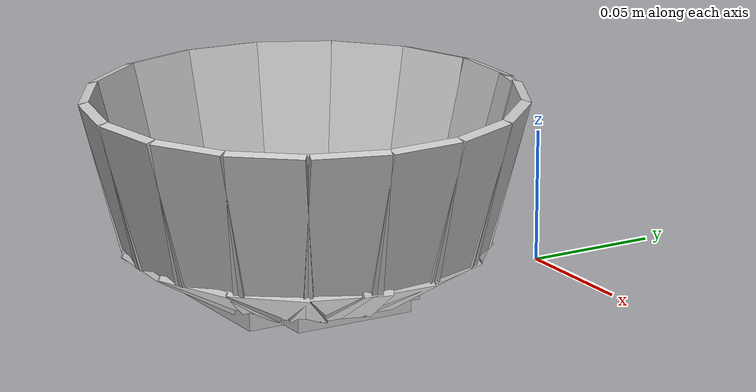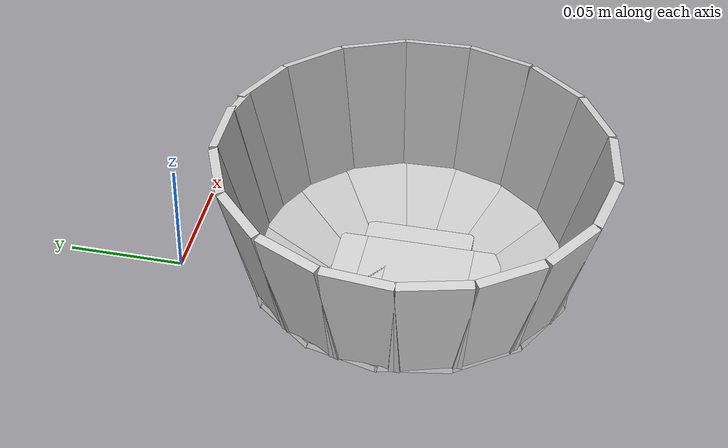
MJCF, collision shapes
<?xml version='1.0' encoding='utf-8'?>
<mujoco model="bigger_akita_black_bowl">
  <asset>
  <texture file="texture.png" name="tex-akita_black_bowl" type="2d" />
  <material name="bigger_akita_black_bowl" reflectance="0.5" texrepeat="1 1" texture="tex-akita_black_bowl" texuniform="false" />
  <mesh file="visual/akita_black_bowl_vis.msh" name="akita_black_bowl_vis" scale="1.05000 1.05000 1.05000" /></asset>
  <worldbody>
    <body>
      <body name="object" pos="0 -0.1 0">
      <geom solimp="0.998 0.998 0.001" solref="0.001 1" density="100" friction="0.95 0.3 0.1" type="mesh" mesh="akita_black_bowl_vis" conaffinity="0" contype="0" group="1" material="bigger_akita_black_bowl" /><geom solimp="0.998 0.998 0.001" solref="0.001 1" density="100" friction="0.95 0.3 0.1" type="box" pos="-0.00015 0.05042 0.01409" quat="0.60990 -0.35780 -0.35780 -0.60990" size="0.00106 0.01488 0.01781" group="0" rgba="0.8 0.8 0.8 0.3" /><geom solimp="0.998 0.998 0.001" solref="0.001 1" density="100" friction="0.95 0.3 0.1" type="box" pos="-0.02203 0.04525 0.01438" quat="0.45959 -0.42672 0.26704 0.73169" size="0.00106 0.01488 0.01781" group="0" rgba="0.8 0.8 0.8 0.3" /><geom solimp="0.998 0.998 0.001" solref="0.001 1" density="100" friction="0.95 0.3 0.1" type="box" pos="-0.03907 0.03162 0.01462" quat="0.29172 -0.47299 0.16619 0.81459" size="0.00106 0.01488 0.01781" group="0" rgba="0.8 0.8 0.8 0.3" /><geom solimp="0.998 0.998 0.001" solref="0.001 1" density="100" friction="0.95 0.3 0.1" type="box" pos="-0.04880 0.01189 0.01476" quat="0.10855 -0.49698 0.05658 0.85908" size="0.00106 0.01488 0.01781" group="0" rgba="0.8 0.8 0.8 0.3" /><geom solimp="0.998 0.998 0.001" solref="0.001 1" density="100" friction="0.95 0.3 0.1" type="box" pos="-0.04931 -0.00952 0.01476" quat="0.49761 -0.07722 0.86246 0.05074" size="0.00106 0.01488 0.01781" group="0" rgba="0.8 0.8 0.8 0.3" /><geom solimp="0.998 0.998 0.001" solref="0.001 1" density="100" friction="0.95 0.3 0.1" type="box" pos="-0.04038 -0.02985 0.01476" quat="0.47408 -0.26597 0.82406 0.15949" size="0.00106 0.01488 0.01781" group="0" rgba="0.8 0.8 0.8 0.3" /><geom solimp="0.998 0.998 0.001" solref="0.001 1" density="100" friction="0.95 0.3 0.1" type="box" pos="-0.02336 -0.04446 0.01476" quat="0.42646 -0.44336 0.74380 0.26138" size="0.00106 0.01488 0.01781" group="0" rgba="0.8 0.8 0.8 0.3" /><geom solimp="0.998 0.998 0.001" solref="0.001 1" density="100" friction="0.95 0.3 0.1" type="box" pos="-0.00181 -0.05019 0.01476" quat="0.59728 0.35787 0.34946 -0.62695" size="0.00106 0.01488 0.01781" group="0" rgba="0.8 0.8 0.8 0.3" /><geom solimp="0.998 0.998 0.001" solref="0.001 1" density="100" friction="0.95 0.3 0.1" type="box" pos="0.02026 -0.04594 0.01476" quat="0.72249 0.27055 0.42070 -0.47731" size="0.00106 0.01488 0.01781" group="0" rgba="0.8 0.8 0.8 0.3" /><geom solimp="0.998 0.998 0.001" solref="0.001 1" density="100" friction="0.95 0.3 0.1" type="box" pos="0.03784 -0.03301 0.01476" quat="0.17267 -0.80894 0.30891 0.46945" size="0.00106 0.01488 0.01781" group="0" rgba="0.8 0.8 0.8 0.3" /><geom solimp="0.998 0.998 0.001" solref="0.001 1" density="100" friction="0.95 0.3 0.1" type="box" pos="0.04833 -0.01365 0.01476" quat="0.85700 0.06550 0.49588 -0.12397" size="0.00106 0.01488 0.01781" group="0" rgba="0.8 0.8 0.8 0.3" /><geom solimp="0.998 0.998 0.001" solref="0.001 1" density="100" friction="0.95 0.3 0.1" type="box" pos="0.04833 -0.01365 0.01476" quat="0.85700 0.06550 0.49588 -0.12397" size="0.00106 0.01488 0.01781" group="0" rgba="0.8 0.8 0.8 0.3" /><geom solimp="0.998 0.998 0.001" solref="0.001 1" density="100" friction="0.95 0.3 0.1" type="box" pos="0.05022 0.00033 0.01476" quat="0.86591 -0.00473 0.50017 -0.00248" size="0.00106 0.01488 0.01781" group="0" rgba="0.8 0.8 0.8 0.3" /><geom solimp="0.998 0.998 0.001" solref="0.001 1" density="100" friction="0.95 0.3 0.1" type="box" pos="0.04554 0.02116 0.01476" quat="0.84663 -0.11101 0.48771 0.18175" size="0.00106 0.01488 0.01781" group="0" rgba="0.8 0.8 0.8 0.3" /><geom solimp="0.998 0.998 0.001" solref="0.001 1" density="100" friction="0.95 0.3 0.1" type="box" pos="0.03234 0.03843 0.01476" quat="0.21392 0.78724 0.36065 -0.45213" size="0.00106 0.01488 0.01781" group="0" rgba="0.8 0.8 0.8 0.3" /><geom solimp="0.998 0.998 0.001" solref="0.001 1" density="100" friction="0.95 0.3 0.1" type="box" pos="0.01736 0.04713 0.01476" quat="0.71324 -0.28870 0.40847 0.49101" size="0.00106 0.01488 0.01781" group="0" rgba="0.8 0.8 0.8 0.3" /><geom solimp="0.998 0.998 0.001" solref="0.001 1" density="100" friction="0.95 0.3 0.1" type="box" pos="-0.00015 0.07068 0.05050" quat="0.09041 0.70130 0.70130 -0.09041" size="0.00192 0.01401 0.02812" group="0" rgba="0.8 0.8 0.8 0.3" /><geom solimp="0.998 0.998 0.001" solref="0.001 1" density="100" friction="0.95 0.3 0.1" type="box" pos="-0.02586 0.06578 0.05050" quat="0.10558 0.55930 0.81905 -0.07209" size="0.00192 0.01401 0.02812" group="0" rgba="0.8 0.8 0.8 0.3" /><geom solimp="0.998 0.998 0.001" solref="0.001 1" density="100" friction="0.95 0.3 0.1" type="box" pos="-0.04761 0.05224 0.05050" quat="0.11689 0.40164 0.90683 -0.05176" size="0.00192 0.01401 0.02812" group="0" rgba="0.8 0.8 0.8 0.3" /><geom solimp="0.998 0.998 0.001" solref="0.001 1" density="100" friction="0.95 0.3 0.1" type="box" pos="-0.06321 0.03162 0.05050" quat="0.22890 -0.12439 0.02951 0.96502" size="0.00192 0.01401 0.02812" group="0" rgba="0.8 0.8 0.8 0.3" /><geom solimp="0.998 0.998 0.001" solref="0.001 1" density="100" friction="0.95 0.3 0.1" type="box" pos="-0.07034 0.00690 0.05050" quat="0.12768 0.04949 0.99056 -0.00638" size="0.00192 0.01401 0.02812" group="0" rgba="0.8 0.8 0.8 0.3" /><geom solimp="0.998 0.998 0.001" solref="0.001 1" density="100" friction="0.95 0.3 0.1" type="box" pos="-0.06832 -0.01806 0.05050" quat="0.12679 0.12680 0.01635 -0.98366" size="0.00192 0.01401 0.02812" group="0" rgba="0.8 0.8 0.8 0.3" /><geom solimp="0.998 0.998 0.001" solref="0.001 1" density="100" friction="0.95 0.3 0.1" type="box" pos="-0.05737 -0.04126 0.05050" quat="0.12173 -0.30325 0.94430 0.03909" size="0.00192 0.01401 0.02812" group="0" rgba="0.8 0.8 0.8 0.3" /><geom solimp="0.998 0.998 0.001" solref="0.001 1" density="100" friction="0.95 0.3 0.1" type="box" pos="-0.03864 -0.05919 0.05050" quat="0.11249 -0.47128 0.87267 0.06075" size="0.00192 0.01401 0.02812" group="0" rgba="0.8 0.8 0.8 0.3" /><geom solimp="0.998 0.998 0.001" solref="0.001 1" density="100" friction="0.95 0.3 0.1" type="box" pos="-0.01515 -0.06903 0.05050" quat="0.62080 0.09971 0.08003 -0.77348" size="0.00192 0.01401 0.02812" group="0" rgba="0.8 0.8 0.8 0.3" /><geom solimp="0.998 0.998 0.001" solref="0.001 1" density="100" friction="0.95 0.3 0.1" type="box" pos="0.01047 -0.06990 0.05050" quat="0.75082 0.08352 0.09678 -0.64802" size="0.00192 0.01401 0.02812" group="0" rgba="0.8 0.8 0.8 0.3" /><geom solimp="0.998 0.998 0.001" solref="0.001 1" density="100" friction="0.95 0.3 0.1" type="box" pos="0.03488 -0.06147 0.05050" quat="0.06445 -0.85651 0.50004 0.11041" size="0.00192 0.01401 0.02812" group="0" rgba="0.8 0.8 0.8 0.3" /><geom solimp="0.998 0.998 0.001" solref="0.001 1" density="100" friction="0.95 0.3 0.1" type="box" pos="0.05446 -0.04505 0.05050" quat="0.93283 0.04342 0.12024 -0.33687" size="0.00192 0.01401 0.02812" group="0" rgba="0.8 0.8 0.8 0.3" /><geom solimp="0.998 0.998 0.001" solref="0.001 1" density="100" friction="0.95 0.3 0.1" type="box" pos="0.06712 -0.02212 0.05050" quat="0.02040 -0.97909 0.15826 0.12620" size="0.00192 0.01401 0.02812" group="0" rgba="0.8 0.8 0.8 0.3" /><geom solimp="0.998 0.998 0.001" solref="0.001 1" density="100" friction="0.95 0.3 0.1" type="box" pos="0.07062 0.00278 0.05050" quat="0.00238 0.99162 0.01844 -0.12782" size="0.00192 0.01401 0.02812" group="0" rgba="0.8 0.8 0.8 0.3" /><geom solimp="0.998 0.998 0.001" solref="0.001 1" density="100" friction="0.95 0.3 0.1" type="box" pos="0.07062 0.00278 0.05050" quat="0.00238 0.99162 0.01844 -0.12782" size="0.00192 0.01401 0.02812" group="0" rgba="0.8 0.8 0.8 0.3" /><geom solimp="0.998 0.998 0.001" solref="0.001 1" density="100" friction="0.95 0.3 0.1" type="box" pos="0.06511 0.02748 0.05050" quat="0.02524 0.97229 0.19574 -0.12533" size="0.00192 0.01401 0.02812" group="0" rgba="0.8 0.8 0.8 0.3" /><geom solimp="0.998 0.998 0.001" solref="0.001 1" density="100" friction="0.95 0.3 0.1" type="box" pos="0.05124 0.04867 0.05050" quat="0.04729 0.92146 0.36683 -0.11878" size="0.00192 0.01401 0.02812" group="0" rgba="0.8 0.8 0.8 0.3" /><geom solimp="0.998 0.998 0.001" solref="0.001 1" density="100" friction="0.95 0.3 0.1" type="box" pos="0.03101 0.06351 0.05050" quat="0.06760 0.84175 0.52452 -0.10850" size="0.00192 0.01401 0.02812" group="0" rgba="0.8 0.8 0.8 0.3" /><geom solimp="0.998 0.998 0.001" solref="0.001 1" density="100" friction="0.95 0.3 0.1" type="box" pos="0.01584 0.06888 0.05050" quat="0.07953 0.77656 0.61693 -0.10010" size="0.00187 0.00666 0.02808" group="0" rgba="0.8 0.8 0.8 0.3" /><geom solimp="0.998 0.998 0.001" solref="0.001 1" density="100" friction="0.95 0.3 0.1" type="box" pos="-0.00000 -0.00113 0.00626" quat="0.70711 0.00000 0.70711 0.00000" size="0.00387 0.02320 0.02425" group="0" rgba="0.8 0.8 0.8 0.3" /><geom solimp="0.998 0.998 0.001" solref="0.001 1" density="100" friction="0.95 0.3 0.1" type="box" pos="-0.00000 -0.03031 0.00626" quat="0.70711 0.00000 0.70711 0.00000" size="0.00387 0.00646 0.02425" group="0" rgba="0.8 0.8 0.8 0.3" /><geom solimp="0.998 0.998 0.001" solref="0.001 1" density="100" friction="0.95 0.3 0.1" type="box" pos="0.02731 0.00024 0.00626" quat="0.50000 -0.50000 0.50000 0.50000" size="0.00387 0.00743 0.02320" group="0" rgba="0.8 0.8 0.8 0.3" /><geom solimp="0.998 0.998 0.001" solref="0.001 1" density="100" friction="0.95 0.3 0.1" type="box" pos="-0.02715 0.00006 0.00626" quat="0.50000 -0.50000 0.50000 0.50000" size="0.00387 0.00680 0.02320" group="0" rgba="0.8 0.8 0.8 0.3" /><geom solimp="0.998 0.998 0.001" solref="0.001 1" density="100" friction="0.95 0.3 0.1" type="box" pos="-0.00000 0.02235 0.00626" quat="0.00000 0.70711 0.00000 -0.70711" size="0.00387 0.01111 0.02425" group="0" rgba="0.8 0.8 0.8 0.3" /></body>
      <site rgba="0 0 0 0" size="0.00750" pos="0.00000 0.00000 -0.09000" name="bottom_site" />
      <site rgba="0 0 0 0" size="0.00750" pos="0.00000 0.00000 0.06000" name="top_site" />
      <site rgba="0 0 0 0" size="0.00750" pos="0.03750 0.03750 0.00000" name="horizontal_radius_site" />
    </body>
  </worldbody>
</mujoco>
